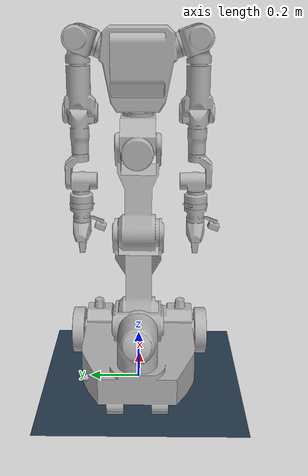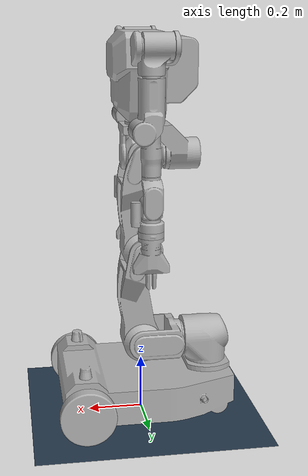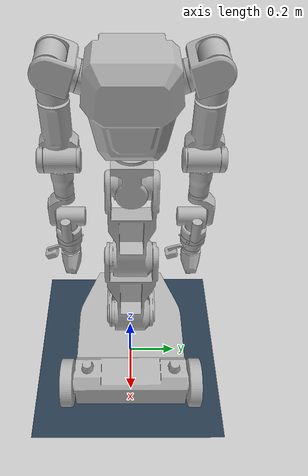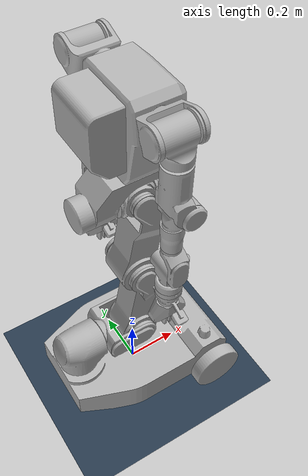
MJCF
<mujoco model="RB_Y1_V1.0.1">
    <compiler angle="radian" meshdir="./meshes/" autolimits="true" eulerseq="xyz"/>
    <option timestep="0.003" solver="CG" iterations="30" tolerance="1e-6"/>
    <size nuserdata="144"/>

    <default>
        <joint armature="10" damping="50" range="-3.14 3.14"/>
        <motor ctrlrange="-3000000 3000000" ctrllimited="true"/>
        <material specular="0.5" shininess="0.25"/>
    </default>

    <asset>
        <texture type="skybox" builtin="gradient" rgb1="0.3 0.5 0.7" rgb2="0 0 0" width="512" height="512"/>
        <texture name="plane" type="2d" builtin="checker" rgb1=".2 .3 .4" rgb2=".1 0.15 0.2" width="512" height="512"
                 mark="cross" markrgb=".8 .8 .8"/>
        <material name="plane" reflectance="0.3" texture="plane" texrepeat="1 1" texuniform="true"/>

        <mesh name="base" file="base.stl"/>
        <mesh name="WHEEL" file="WHEEL.stl"/>
        <mesh name="LINK_1" file="LINK_1.stl"/>
        <mesh name="LINK_2" file="LINK_2.stl"/>
        <mesh name="LINK_3" file="LINK_3.stl"/>
        <mesh name="LINK_4" file="LINK_4.stl"/>
        <mesh name="LINK_5" file="LINK_5.stl"/>
        <mesh name="LINK_6" file="LINK_6.stl"/>
        <mesh name="LINK_7" file="LINK_7.stl"/>
        <mesh name="LINK_8" file="LINK_8.stl"/>
        <mesh name="LINK_9" file="LINK_9.stl"/>
        <mesh name="LINK_10" file="LINK_10.stl"/>
        <mesh name="LINK_11" file="LINK_11.stl"/>
        <mesh name="LINK_12" file="LINK_12.stl"/>
        <mesh name="LINK_13" file="LINK_13.stl"/>
        <mesh name="LINK_14" file="LINK_14.stl"/>
        <mesh name="LINK_15" file="LINK_15.stl"/>
        <mesh name="LINK_16" file="LINK_16.stl"/>
        <mesh name="LINK_17" file="LINK_17.stl"/>
        <mesh name="LINK_18" file="LINK_18.stl"/>
        <mesh name="LINK_19" file="LINK_19.stl"/>
        <mesh name="LINK_20" file="LINK_20.stl"/>
        <mesh name="EE_BODY" file="EE_BODY.stl"/>
        <mesh name="EE_FINGER" file="EE_FINGER.stl"/>
    </asset>

    <visual>
        <map force="0.1" zfar="30"/>
        <rgba haze="0.15 0.25 0.35 1"/>
        <quality shadowsize="4096"/>
        <global offwidth="800" offheight="800"/>
    </visual>

    <worldbody>
        <geom name="floor" pos="0 0 0" size="0 0 .25" type="plane" material="plane" condim="1"
              solimp="0.95 0.99 0.001 0.5 2" friction="0.05 0.001 0.05"/>
        <light directional="true" diffuse=".8 .8 .8" specular="0 0 0" pos="0 0 5" dir="0 0 -1" castshadow="false"/>

        <body name="link_base" pos="0 0 0">
            <inertial pos="-0.06157942 -0.00142271 0.13513861" mass="60.08042639"
                      fullinertia="1.37742174 2.99386515 3.76085052 0.02521789 0.18565467 -0.00641869"/>
            <joint name="base" type="free"/>
            <geom type="mesh" group="1" density="0" rgba="0.7 0.7 0.7 1" mesh="base" friction="0 0 0"/>
            <body name="link_torso_0" pos="0 0 0.2805">
                <inertial pos="-0.0884841 0.00021367 4.6e-07" quat="0.443798 0.550483 -0.443815 0.55049" mass="2.24282"
                          diaginertia="0.0189253 0.0143368 0.00985172"/>
                <joint name="torso_0" pos="0 0 0" axis="1 0 0" limited="true" range="-0.349066 0.349066"/>
                <geom type="mesh" contype="0" conaffinity="0" group="1" density="0" rgba="0.7 0.7 0.7 1" mesh="LINK_1"/>
                <body name="link_torso_1">
                    <inertial pos="0.00728955 -0.0172852 0.0691138" quat="0.997768 -0.0453891 0.0382115 -0.0306483"
                              mass="9.72163" diaginertia="0.149421 0.139376 0.0275059"/>
                    <joint name="torso_1" pos="0 0 0" axis="0 1 0" limited="true" range="-1.0472 1.52173"/>
                    <geom type="mesh" contype="0" conaffinity="0" group="1" density="0" rgba="0.7 0.7 0.7 1"
                          mesh="LINK_2"/>
                    <body name="link_torso_2" pos="0 0 0.35">
                        <inertial pos="0.00653835 -0.0176954 0.0563658" quat="0.99687 -0.052526 0.0433482 -0.0401474"
                                  mass="9.21692" diaginertia="0.12242 0.116748 0.0292915"/>
                        <joint name="torso_2" pos="0 0 0" axis="0 1 0" limited="true" range="-2.44346 1.5708"/>
                        <geom type="mesh" contype="0" conaffinity="0" group="1" density="0" rgba="0.7 0.7 0.7 1"
                              mesh="LINK_3"/>
                        <body name="link_torso_3" pos="0 0 0.35">
                            <inertial pos="-0.00574156 -0.0172598 5.61e-05" quat="0.0913806 0.682262 -0.18841 0.700478"
                                      mass="4.18679" diaginertia="0.00955618 0.00946572 0.00832635"/>
                            <joint name="torso_3" pos="0 0 0" axis="0 1 0" limited="true" range="-0.785398 1.5708"/>
                            <geom type="mesh" contype="0" conaffinity="0" group="1" density="0" rgba="0.7 0.7 0.7 1"
                                  mesh="LINK_4"/>
                            <body name="link_torso_4">
                                <inertial pos="-0.0909709 5.085e-05 0.0260195"
                                          quat="-0.0536434 0.4399 -0.0270045 0.896036"
                                          mass="4.45566" diaginertia="0.0255574 0.0255082 0.00942882"/>
                                <joint name="torso_4" pos="0 0 0" axis="1 0 0" limited="true"
                                       range="-0.523599 0.523599"/>
                                <geom type="mesh" contype="0" conaffinity="0" group="1" density="0" rgba="0.7 0.7 0.7 1"
                                      mesh="LINK_5"/>
                                <body name="link_torso_5" pos="0 0 0.309427">
                                    <inertial pos="-0.0240609 0.00153804 -0.0324788"
                                              quat="0.998213 0.00351548 -0.0531835 0.0270014" mass="12.8782"
                                              diaginertia="0.19169 0.155257 0.133022"/>
                                    <joint name="torso_5" pos="0 0 0" axis="0 0 1" limited="true"
                                           range="-1.5708 1.5708"/>
                                    <geom type="mesh" contype="0" conaffinity="0" group="1" density="0"
                                          rgba="0.7 0.7 0.7 1"
                                          mesh="LINK_6"/>
                                    <body name="link_right_arm_0" pos="0 -0.22 0.0800735" quat="0.984808 -0.173648 0 0">
                                        <inertial pos="-0.00316662 0.0343718 -3e-07"
                                                  quat="0.536676 0.553304 0.439546 0.461122" mass="1.26164"
                                                  diaginertia="0.00433912 0.00432154 0.00223129"/>
                                        <joint name="right_arm_0" pos="0 0 0" axis="0 1 0" limited="true"
                                               range="-2.35619 2.35619"/>
                                        <geom type="mesh" contype="0" conaffinity="0" group="1" density="0"
                                              rgba="0.7 0.7 0.7 1" mesh="LINK_7"/>
                                        <body name="link_right_arm_1" quat="0.984808 0.173648 0 0">
                                            <inertial pos="-0.00307855 -0.00124741 -0.0129432"
                                                      quat="0.691024 -0.061096 -0.016345 0.72006" mass="2.27287"
                                                      diaginertia="0.00447747 0.0038967 0.00286448"/>
                                            <joint name="right_arm_1" pos="0 0 0" axis="1 0 0" limited="true"
                                                   range="-3.14159 0.05"/>
                                            <geom type="mesh" contype="0" conaffinity="0" group="1" density="0"
                                                  rgba="0.7 0.7 0.7 1" mesh="LINK_8"/>
                                            <body name="link_right_arm_2">
                                                <inertial pos="0.00115434 -0.00196635 -0.161925"
                                                          quat="0.998316 -0.0390505 -0.0388849 0.0181103" mass="2.46909"
                                                          diaginertia="0.0098447 0.00928024 0.00322202"/>
                                                <joint name="right_arm_2" pos="0 0 0" axis="0 0 1" limited="true"
                                                       range="-2.0944 2.0944"/>
                                                <geom type="mesh" contype="0" conaffinity="0" group="1" density="0"
                                                      rgba="0.7 0.7 0.7 1" mesh="LINK_9"/>
                                                <body name="link_right_arm_3" pos="0.031 0 -0.276">
                                                    <inertial pos="-0.0160313 -0.00692891 -0.0454981"
                                                              quat="0.950945 0.0932571 0.100342 0.277377" mass="2.26099"
                                                              diaginertia="0.0086724 0.00849326 0.00187523"/>
                                                    <joint name="right_arm_3" pos="0 0 0" axis="0 1 0" limited="true"
                                                           range="-2.61799 0.01"/>
                                                    <geom type="mesh" contype="0" conaffinity="0" group="1" density="0"
                                                          rgba="0.7 0.7 0.7 1" mesh="LINK_10"/>
                                                    <body name="link_right_arm_4" pos="-0.031 0 -0.256">
                                                        <inertial pos="-1.1e-07 -0.0269604 0.0618211"
                                                                  quat="0.686909 -0.167796 0.167796 0.686909"
                                                                  mass="0.425087"
                                                                  diaginertia="0.000885625 0.00082466 0.000266295"/>
                                                        <joint name="right_arm_4" pos="0 0 0" axis="0 0 1"
                                                               limited="true"
                                                               range="-6.28319 6.28319"/>
                                                        <geom type="mesh" contype="0" conaffinity="0" group="1"
                                                              density="0"
                                                              rgba="0.7 0.7 0.7 1" mesh="LINK_11"/>
                                                        <body name="link_right_arm_5">
                                                            <inertial pos="0.00318034 -0.00532264 -0.0280966"
                                                                      quat="0.559407 0.0608226 -0.0803636 0.822743"
                                                                      mass="1.59194"
                                                                      diaginertia="0.00262685 0.00255036 0.00151658"/>
                                                            <joint name="right_arm_5" pos="0 0 0" axis="0 1 0"
                                                                   limited="true" range="-1.74533 2.00713"/>
                                                            <geom type="mesh" contype="0" conaffinity="0" group="1"
                                                                  density="0" rgba="0.7 0.7 0.7 1" mesh="LINK_12"/>
                                                            <body name="link_right_arm_6">
                                                                <inertial pos="0.000121728 -5.16746e-05 -0.112461"
                                                                          quat="0.998072 -0.0614529 -0.00470894 0.00726149"
                                                                          mass="1.23267"
                                                                          diaginertia="0.00317453 0.00283703 0.00155214"/>
                                                                <joint name="right_arm_6" pos="0 0 0" axis="0 0 1"
                                                                       limited="true" range="-2.96706 2.96706"/>
                                                                <geom type="mesh" contype="0" conaffinity="0" group="1"
                                                                      density="0" rgba="0.7 0.7 0.7 1" mesh="LINK_13"/>
                                                                <site name="ee_right" pos="0 0 -0.1087"/>
                                                                <geom pos="0 0 -0.1087" type="mesh" contype="0"
                                                                      conaffinity="0" group="1" density="0"
                                                                      rgba="0.7 0.7 0.7 1" mesh="EE_BODY"/>
                                                                <geom pos="0.005 0 -0.2278" type="mesh" contype="0"
                                                                      conaffinity="0" group="1" density="0"
                                                                      rgba="0.7 0.7 0.7 1" mesh="EE_FINGER"/>
                                                                <geom pos="-0.005 0 -0.2278" quat="4.48966e-11 0 0 1"
                                                                      type="mesh" contype="0" conaffinity="0" group="1"
                                                                      density="0" rgba="0.7 0.7 0.7 1"
                                                                      mesh="EE_FINGER"/>
                                                            </body>
                                                        </body>
                                                    </body>
                                                </body>
                                            </body>
                                        </body>
                                    </body>
                                    <body name="link_left_arm_0" pos="0 0.22 0.0800735" quat="0.984808 0.173648 0 0">
                                        <inertial pos="-0.00316662 -0.0343715 2.42e-06"
                                                  quat="0.441442 0.459281 0.538276 0.551768" mass="1.26164"
                                                  diaginertia="0.0043391 0.00432158 0.00223133"/>
                                        <joint name="left_arm_0" pos="0 0 0" axis="0 1 0" limited="true"
                                               range="-2.35619 2.35619"/>
                                        <geom type="mesh" contype="0" conaffinity="0" group="1" density="0"
                                              rgba="0.7 0.7 0.7 1" mesh="LINK_14"/>
                                        <body name="link_left_arm_1" quat="0.984808 -0.173648 0 0">
                                            <inertial pos="-0.0018347 0.00040596 -0.0100873"
                                                      quat="0.701113 -0.0246572 -0.049881 0.710875" mass="1.88139"
                                                      diaginertia="0.00355382 0.00296561 0.0022966"/>
                                            <joint name="left_arm_1" pos="0 0 0" axis="1 0 0" limited="true"
                                                   range="-0.05 3.14159"/>
                                            <geom type="mesh" contype="0" conaffinity="0" group="1" density="0"
                                                  rgba="0.7 0.7 0.7 1" mesh="LINK_15"/>
                                            <body name="link_left_arm_2">
                                                <inertial pos="0.00066086 -0.00038583 -0.15743"
                                                          quat="0.999413 -0.00635373 -0.0335732 -0.00246859"
                                                          mass="2.35634"
                                                          diaginertia="0.00845197 0.00802394 0.00293109"/>
                                                <joint name="left_arm_2" pos="0 0 0" axis="0 0 1" limited="true"
                                                       range="-2.0944 2.0944"/>
                                                <geom type="mesh" contype="0" conaffinity="0" group="1" density="0"
                                                      rgba="0.7 0.7 0.7 1" mesh="LINK_16"/>
                                                <body name="link_left_arm_3" pos="0.031 0 -0.276">
                                                    <inertial pos="-0.015653 0.00793126 -0.0499794"
                                                              quat="0.977098 -0.0897025 0.113811 -0.15582"
                                                              mass="2.00906"
                                                              diaginertia="0.00798526 0.00783637 0.00146823"/>
                                                    <joint name="left_arm_3" pos="0 0 0" axis="0 1 0" limited="true"
                                                           range="-2.61799 0.01"/>
                                                    <geom type="mesh" contype="0" conaffinity="0" group="1" density="0"
                                                          rgba="0.7 0.7 0.7 1" mesh="LINK_17"/>
                                                    <body name="link_left_arm_4" pos="-0.031 0 -0.256">
                                                        <inertial pos="1.1e-07 0.0269604 0.0618211"
                                                                  quat="0.686909 0.167796 -0.167796 0.686909"
                                                                  mass="0.425087"
                                                                  diaginertia="0.000885625 0.00082466 0.000266295"/>
                                                        <joint name="left_arm_4" pos="0 0 0" axis="0 0 1" limited="true"
                                                               range="-6.28319 6.28319"/>
                                                        <geom type="mesh" contype="0" conaffinity="0" group="1"
                                                              density="0"
                                                              rgba="0.7 0.7 0.7 1" mesh="LINK_18"/>
                                                        <body name="link_left_arm_5">
                                                            <inertial pos="0.00340082 0.00576824 -0.0250731"
                                                                      quat="0.874666 -0.0845974 0.0492323 0.474742"
                                                                      mass="1.44265"
                                                                      diaginertia="0.00238544 0.00231489 0.00134498"/>
                                                            <joint name="left_arm_5" pos="0 0 0" axis="0 1 0"
                                                                   limited="true"
                                                                   range="-1.74533 2.00713"/>
                                                            <geom type="mesh" contype="0" conaffinity="0" group="1"
                                                                  density="0" rgba="0.7 0.7 0.7 1" mesh="LINK_19"/>
                                                            <body name="link_left_arm_6">
                                                                <inertial pos="-0.000121728 5.16746e-05 -0.112461"
                                                                          quat="0.997975 -0.0629359 -0.00688517 0.00606201"
                                                                          mass="1.23267"
                                                                          diaginertia="0.00317468 0.00283802 0.001551"/>
                                                                <joint name="left_arm_6" pos="0 0 0" axis="0 0 1"
                                                                       limited="true" range="-2.96706 2.96706"/>
                                                                <geom type="mesh" contype="0" conaffinity="0" group="1"
                                                                      density="0" rgba="0.7 0.7 0.7 1" mesh="LINK_20"/>
                                                                <site name="ee_left" pos="0 0 -0.1087"/>
                                                                <geom pos="0 0 -0.1087" type="mesh" contype="0"
                                                                      conaffinity="0" group="1" density="0"
                                                                      rgba="0.7 0.7 0.7 1" mesh="EE_BODY"/>
                                                                <geom pos="0.005 0 -0.2278" type="mesh" contype="0"
                                                                      conaffinity="0" group="1" density="0"
                                                                      rgba="0.7 0.7 0.7 1" mesh="EE_FINGER"/>
                                                                <geom pos="-0.005 0 -0.2278" quat="4.48966e-11 0 0 1"
                                                                      type="mesh" contype="0" conaffinity="0" group="1"
                                                                      density="0" rgba="0.7 0.7 0.7 1"
                                                                      mesh="EE_FINGER"/>
                                                            </body>
                                                        </body>
                                                    </body>
                                                </body>
                                            </body>
                                        </body>
                                    </body>
                                    <body name="link_head_0" pos="0 0 0.14">
                                        <inertial pos="0 0 0" quat="1 0 0 0" mass="1" diaginertia="0.000001 0.000001 0.000001"/>
                                        <joint name="head_0" pos="0 0 0" axis="0 0 1" limited="true" range="-0.523 0.523"/>
                                        <body name="link_head_1" pos="0 0 0">
                                            <inertial pos="0 0 0" quat="1 0 0 0" mass="1" diaginertia="0.000001 0.000001 0.000001"/>
                                            <joint name="head_1" pos="0 0 0" axis="0 1 0" limited="true" range="-0.35 1.57"/>
                                        </body>
                                    </body>
                                </body>
                            </body>
                        </body>
                    </body>
                </body>
            </body>
            <body name="wheel_r" pos="0.228 -0.265 0.1">
                <inertial pos="0 -0.00073938 0" quat="0.707107 0 0 0.707107" mass="1.37784"
                          diaginertia="0.00811815 0.00426657 0.00426657"/>
                <joint name="right_wheel" pos="0 0 0" axis="0 1 0" limited="false"/>
                <geom type="mesh" group="1" density="0" rgba="0.7 0.7 0.7 1" mesh="WHEEL" friction="1 0.01 5"/>
            </body>
            <body name="wheel_l" pos="0.228 0.265 0.1">
                <inertial pos="0 0.00073938 0" quat="0.707107 0 0 0.707107" mass="1.37784"
                          diaginertia="0.00811815 0.00426657 0.00426657"/>
                <joint name="left_wheel" pos="0 0 0" axis="0 1 0" limited="false"/>
                <geom type="mesh" group="1" density="0" rgba="0.7 0.7 0.7 1" mesh="WHEEL" friction="1 0.01 5"/>
            </body>
        </body>
    </worldbody>

    <actuator>
        <motor name="left_wheel_act" joint="left_wheel"/>
        <motor name="right_wheel_act" joint="right_wheel"/>

        <motor name="link1_act" joint="torso_0"/>
        <motor name="link2_act" joint="torso_1"/>
        <motor name="link3_act" joint="torso_2"/>
        <motor name="link4_act" joint="torso_3"/>
        <motor name="link5_act" joint="torso_4"/>
        <motor name="link6_act" joint="torso_5"/>

        <motor name="left_arm_1_act" joint="left_arm_0"/>
        <motor name="left_arm_2_act" joint="left_arm_1"/>
        <motor name="left_arm_3_act" joint="left_arm_2"/>
        <motor name="left_arm_4_act" joint="left_arm_3"/>
        <motor name="left_arm_5_act" joint="left_arm_4"/>
        <motor name="left_arm_6_act" joint="left_arm_5"/>
        <motor name="left_arm_7_act" joint="left_arm_6"/>

        <motor name="right_arm_1_act" joint="right_arm_0"/>
        <motor name="right_arm_2_act" joint="right_arm_1"/>
        <motor name="right_arm_3_act" joint="right_arm_2"/>
        <motor name="right_arm_4_act" joint="right_arm_3"/>
        <motor name="right_arm_5_act" joint="right_arm_4"/>
        <motor name="right_arm_6_act" joint="right_arm_5"/>
        <motor name="right_arm_7_act" joint="right_arm_6"/>

        <motor name="head_0_act" joint="head_0"/>
        <motor name="head_1_act" joint="head_1"/>
    </actuator>
</mujoco>
